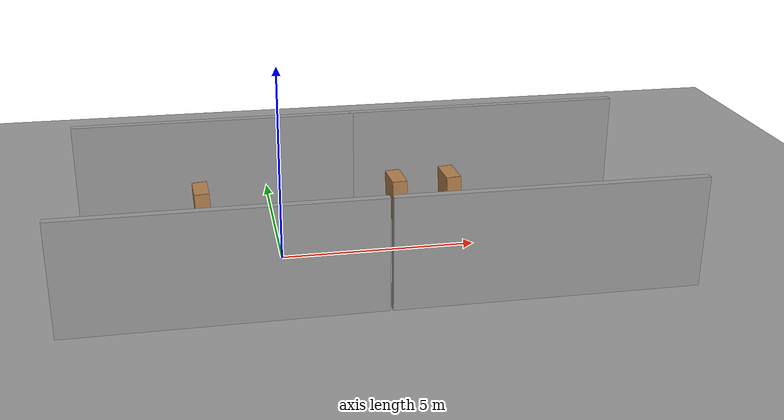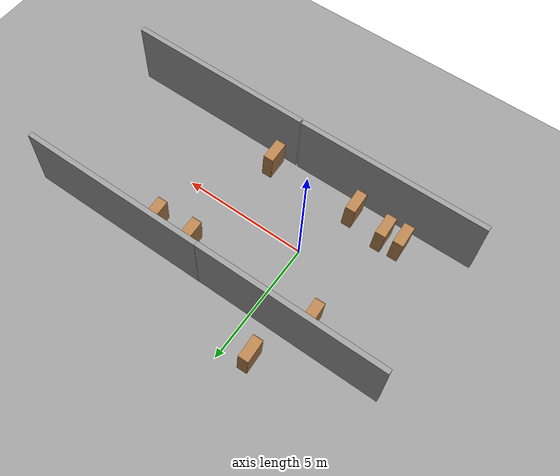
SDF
<sdf version="1.6">
 <world name="default">
  <light name="sun" type="directional">
   <cast_shadows>0</cast_shadows>
   <pose>0 0 10 0 -0 0</pose>
   <diffuse>0.8 0.8 0.8 1</diffuse>
   <specular>0.2 0.2 0.2 1</specular>
   <attenuation>
    <range>1000</range>
    <constant>0.9</constant>
    <linear>0.01</linear>
    <quadratic>0.001</quadratic>
   </attenuation>
   <direction>0.5 0.1 -0.9</direction>
  </light>
  <scene><ambient>0.4 0.4 0.4 1</ambient><background>0.7 0.7 0.7 1</background><shadows>0</shadows></scene>
  <physics name="default_physics" default="0" type="ode">
   <max_step_size>0.01</max_step_size>
   <real_time_factor>1</real_time_factor>
   <real_time_update_rate>100</real_time_update_rate>
  </physics>
  <model name="bookshelf">
   <static>1</static>
   <link name="link">
    <inertial><mass>1</mass></inertial>
    <collision name="back">
     <pose>0 0.005 0.6 0 -0 0</pose>
     <geometry><box><size>0.9 0.01 1.2</size></box></geometry>
    </collision>
    <visual name="visual1">
     <pose>0 0.005 0.6 0 -0 0</pose>
     <geometry><box><size>0.9 0.01 1.2</size></box></geometry>
     <material>
      <script><uri>file://media/materials/scripts/gazebo.material</uri><name>Gazebo/Wood</name></script>
     </material>
    </visual>
    <collision name="left_side">
     <pose>0.45 -0.195 0.6 0 -0 0</pose>
     <geometry><box><size>0.02 0.4 1.2</size></box></geometry>
    </collision>
    <visual name="visual2">
     <pose>0.45 -0.195 0.6 0 -0 0</pose>
     <geometry><box><size>0.02 0.4 1.2</size></box></geometry>
     <material>
      <script><uri>file://media/materials/scripts/gazebo.material</uri><name>Gazebo/Wood</name></script>
     </material>
    </visual>
    <collision name="right_side">
     <pose>-0.45 -0.195 0.6 0 -0 0</pose>
     <geometry><box><size>0.02 0.4 1.2</size></box></geometry>
    </collision>
    <visual name="visual3">
     <pose>-0.45 -0.195 0.6 0 -0 0</pose>
     <geometry><box><size>0.02 0.4 1.2</size></box></geometry>
     <material>
      <script><uri>file://media/materials/scripts/gazebo.material</uri><name>Gazebo/Wood</name></script>
     </material>
    </visual>
    <collision name="bottom">
     <pose>0 -0.195 0.03 0 -0 0</pose>
     <geometry><box><size>0.88 0.4 0.06</size></box></geometry>
    </collision>
    <visual name="visual4">
     <pose>0 -0.195 0.03 0 -0 0</pose>
     <geometry><box><size>0.88 0.4 0.06</size></box></geometry>
     <material>
      <script><uri>file://media/materials/scripts/gazebo.material</uri><name>Gazebo/Wood</name></script>
     </material>
    </visual>
    <collision name="top">
     <pose>0 -0.195 1.19 0 -0 0</pose>
     <geometry><box><size>0.88 0.4 0.02</size></box></geometry>
    </collision>
    <visual name="visual5">
     <pose>0 -0.195 1.19 0 -0 0</pose>
     <geometry><box><size>0.88 0.4 0.02</size></box></geometry>
     <material>
      <script><uri>file://media/materials/scripts/gazebo.material</uri><name>Gazebo/Wood</name></script>
     </material>
    </visual>
    <collision name="low_shelf">
     <pose>0 -0.195 0.43 0 -0 0</pose>
     <geometry><box><size>0.88 0.4 0.02</size></box></geometry>
    </collision>
    <visual name="visual6">
     <pose>0 -0.195 0.43 0 -0 0</pose>
     <geometry><box><size>0.88 0.4 0.02</size></box></geometry>
     <material>
      <script><uri>file://media/materials/scripts/gazebo.material</uri><name>Gazebo/Wood</name></script>
     </material>
    </visual>
    <collision name="high_shelf">
     <pose>0 -0.195 0.8 0 -0 0</pose>
     <geometry><box><size>0.88 0.4 0.02</size></box></geometry>
    </collision>
    <visual name="visual7">
     <pose>0 -0.195 0.8 0 -0 0</pose>
     <geometry><box><size>0.88 0.4 0.02</size></box></geometry>
     <material>
      <script><uri>file://media/materials/scripts/gazebo.material</uri><name>Gazebo/Wood</name></script>
     </material>
    </visual>
    <velocity_decay><linear>0</linear><angular>0</angular></velocity_decay>
   </link>
   <pose>-1.16426 4.35091 -0.006533 -0.048058 0.002164 1.61576</pose>
  </model>
  <model name="ground_plane_0">
   <static>1</static>
   <link name="link">
    <collision name="collision">
     <geometry><plane><normal>0 0 1</normal><size>100 100</size></plane></geometry>
     <surface><friction><ode><mu>100</mu><mu2>50</mu2></ode></friction></surface>
    </collision>
    <visual name="visual">
     <cast_shadows>0</cast_shadows>
     <geometry><plane><normal>0 0 1</normal><size>100 100</size></plane></geometry>
     <material>
      <script><uri>file://media/materials/scripts/gazebo.material</uri><name>Gazebo/Grey</name></script>
     </material>
    </visual>
    <velocity_decay><linear>0</linear><angular>0</angular></velocity_decay>
   </link>
   <pose>0.497681 0 0 0 -0 0</pose>
  </model>
  <gravity>0 0 -9.8</gravity>
  <magnetic_field>6e-06 2.3e-05 -4.2e-05</magnetic_field>
  <atmosphere type="adiabatic"/>
  <spherical_coordinates>
   <surface_model>EARTH_WGS84</surface_model>
   <latitude_deg>0</latitude_deg>
   <longitude_deg>0</longitude_deg>
   <elevation>0</elevation>
   <heading_deg>0</heading_deg>
  </spherical_coordinates>
  <model name="grey_wall">
   <static>1</static>
   <link name="link">
    <pose>0 0 1.4 0 -0 0</pose>
    <collision name="collision"><geometry><box><size>7.5 0.2 2.8</size></box></geometry></collision>
    <visual name="visual">
     <cast_shadows>0</cast_shadows>
     <geometry><box><size>7.5 0.2 2.8</size></box></geometry>
     <material>
      <script>
       <uri>model://grey_wall/materials/scripts</uri>
       <uri>model://grey_wall/materials/textures</uri>
       <name>vrc/grey_wall</name>
      </script>
     </material>
    </visual>
   </link>
   <pose>6.00331 -3.15825 0 0 -0 0</pose>
  </model>
  <model name="grey_wall_clone">
   <static>1</static>
   <link name="link">
    <pose>0 0 1.4 0 -0 0</pose>
    <collision name="collision"><geometry><box><size>7.5 0.2 2.8</size></box></geometry></collision>
    <visual name="visual">
     <cast_shadows>0</cast_shadows>
     <geometry><box><size>7.5 0.2 2.8</size></box></geometry>
     <material>
      <script>
       <uri>model://grey_wall/materials/scripts</uri>
       <uri>model://grey_wall/materials/textures</uri>
       <name>vrc/grey_wall</name>
      </script>
     </material>
    </visual>
   </link>
   <pose>-1.56203 -3.18626 0 0 -0 0.008661</pose>
  </model>
  <model name="grey_wall_clone_clone">
   <static>1</static>
   <link name="link">
    <pose>0 0 1.4 0 -0 0</pose>
    <collision name="collision"><geometry><box><size>7.5 0.2 2.8</size></box></geometry></collision>
    <visual name="visual">
     <cast_shadows>0</cast_shadows>
     <geometry><box><size>7.5 0.2 2.8</size></box></geometry>
     <material>
      <script>
       <uri>model://grey_wall/materials/scripts</uri>
       <uri>model://grey_wall/materials/textures</uri>
       <name>vrc/grey_wall</name>
      </script>
     </material>
    </visual>
   </link>
   <pose>-1.44763 2.95808 0 0 -0 0.008661</pose>
  </model>
  <model name="grey_wall_clone_clone_0">
   <static>1</static>
   <link name="link">
    <pose>0 0 1.4 0 -0 0</pose>
    <collision name="collision"><geometry><box><size>7.5 0.2 2.8</size></box></geometry></collision>
    <visual name="visual">
     <cast_shadows>0</cast_shadows>
     <geometry><box><size>7.5 0.2 2.8</size></box></geometry>
     <material>
      <script>
       <uri>model://grey_wall/materials/scripts</uri>
       <uri>model://grey_wall/materials/textures</uri>
       <name>vrc/grey_wall</name>
      </script>
     </material>
    </visual>
   </link>
   <pose>5.97271 3.02827 0 0 -0 0.008661</pose>
  </model>
  <model name="bookshelf_clone">
   <static>1</static>
   <link name="link">
    <inertial><mass>1</mass></inertial>
    <collision name="back">
     <pose>0 0.005 0.6 0 -0 0</pose>
     <geometry><box><size>0.9 0.01 1.2</size></box></geometry>
    </collision>
    <visual name="visual1">
     <pose>0 0.005 0.6 0 -0 0</pose>
     <geometry><box><size>0.9 0.01 1.2</size></box></geometry>
     <material>
      <script><uri>file://media/materials/scripts/gazebo.material</uri><name>Gazebo/Wood</name></script>
     </material>
    </visual>
    <collision name="left_side">
     <pose>0.45 -0.195 0.6 0 -0 0</pose>
     <geometry><box><size>0.02 0.4 1.2</size></box></geometry>
    </collision>
    <visual name="visual2">
     <pose>0.45 -0.195 0.6 0 -0 0</pose>
     <geometry><box><size>0.02 0.4 1.2</size></box></geometry>
     <material>
      <script><uri>file://media/materials/scripts/gazebo.material</uri><name>Gazebo/Wood</name></script>
     </material>
    </visual>
    <collision name="right_side">
     <pose>-0.45 -0.195 0.6 0 -0 0</pose>
     <geometry><box><size>0.02 0.4 1.2</size></box></geometry>
    </collision>
    <visual name="visual3">
     <pose>-0.45 -0.195 0.6 0 -0 0</pose>
     <geometry><box><size>0.02 0.4 1.2</size></box></geometry>
     <material>
      <script><uri>file://media/materials/scripts/gazebo.material</uri><name>Gazebo/Wood</name></script>
     </material>
    </visual>
    <collision name="bottom">
     <pose>0 -0.195 0.03 0 -0 0</pose>
     <geometry><box><size>0.88 0.4 0.06</size></box></geometry>
    </collision>
    <visual name="visual4">
     <pose>0 -0.195 0.03 0 -0 0</pose>
     <geometry><box><size>0.88 0.4 0.06</size></box></geometry>
     <material>
      <script><uri>file://media/materials/scripts/gazebo.material</uri><name>Gazebo/Wood</name></script>
     </material>
    </visual>
    <collision name="top">
     <pose>0 -0.195 1.19 0 -0 0</pose>
     <geometry><box><size>0.88 0.4 0.02</size></box></geometry>
    </collision>
    <visual name="visual5">
     <pose>0 -0.195 1.19 0 -0 0</pose>
     <geometry><box><size>0.88 0.4 0.02</size></box></geometry>
     <material>
      <script><uri>file://media/materials/scripts/gazebo.material</uri><name>Gazebo/Wood</name></script>
     </material>
    </visual>
    <collision name="low_shelf">
     <pose>0 -0.195 0.43 0 -0 0</pose>
     <geometry><box><size>0.88 0.4 0.02</size></box></geometry>
    </collision>
    <visual name="visual6">
     <pose>0 -0.195 0.43 0 -0 0</pose>
     <geometry><box><size>0.88 0.4 0.02</size></box></geometry>
     <material>
      <script><uri>file://media/materials/scripts/gazebo.material</uri><name>Gazebo/Wood</name></script>
     </material>
    </visual>
    <collision name="high_shelf">
     <pose>0 -0.195 0.8 0 -0 0</pose>
     <geometry><box><size>0.88 0.4 0.02</size></box></geometry>
    </collision>
    <visual name="visual7">
     <pose>0 -0.195 0.8 0 -0 0</pose>
     <geometry><box><size>0.88 0.4 0.02</size></box></geometry>
     <material>
      <script><uri>file://media/materials/scripts/gazebo.material</uri><name>Gazebo/Wood</name></script>
     </material>
    </visual>
    <velocity_decay><linear>0</linear><angular>0</angular></velocity_decay>
   </link>
   <pose>-2.33282 -2.19009 -0.006533 -0.048058 0.002164 1.61576</pose>
  </model>
  <model name="bookshelf_clone_0">
   <static>1</static>
   <link name="link">
    <inertial><mass>1</mass></inertial>
    <collision name="back">
     <pose>0 0.005 0.6 0 -0 0</pose>
     <geometry><box><size>0.9 0.01 1.2</size></box></geometry>
    </collision>
    <visual name="visual1">
     <pose>0 0.005 0.6 0 -0 0</pose>
     <geometry><box><size>0.9 0.01 1.2</size></box></geometry>
     <material>
      <script><uri>file://media/materials/scripts/gazebo.material</uri><name>Gazebo/Wood</name></script>
     </material>
    </visual>
    <collision name="left_side">
     <pose>0.45 -0.195 0.6 0 -0 0</pose>
     <geometry><box><size>0.02 0.4 1.2</size></box></geometry>
    </collision>
    <visual name="visual2">
     <pose>0.45 -0.195 0.6 0 -0 0</pose>
     <geometry><box><size>0.02 0.4 1.2</size></box></geometry>
     <material>
      <script><uri>file://media/materials/scripts/gazebo.material</uri><name>Gazebo/Wood</name></script>
     </material>
    </visual>
    <collision name="right_side">
     <pose>-0.45 -0.195 0.6 0 -0 0</pose>
     <geometry><box><size>0.02 0.4 1.2</size></box></geometry>
    </collision>
    <visual name="visual3">
     <pose>-0.45 -0.195 0.6 0 -0 0</pose>
     <geometry><box><size>0.02 0.4 1.2</size></box></geometry>
     <material>
      <script><uri>file://media/materials/scripts/gazebo.material</uri><name>Gazebo/Wood</name></script>
     </material>
    </visual>
    <collision name="bottom">
     <pose>0 -0.195 0.03 0 -0 0</pose>
     <geometry><box><size>0.88 0.4 0.06</size></box></geometry>
    </collision>
    <visual name="visual4">
     <pose>0 -0.195 0.03 0 -0 0</pose>
     <geometry><box><size>0.88 0.4 0.06</size></box></geometry>
     <material>
      <script><uri>file://media/materials/scripts/gazebo.material</uri><name>Gazebo/Wood</name></script>
     </material>
    </visual>
    <collision name="top">
     <pose>0 -0.195 1.19 0 -0 0</pose>
     <geometry><box><size>0.88 0.4 0.02</size></box></geometry>
    </collision>
    <visual name="visual5">
     <pose>0 -0.195 1.19 0 -0 0</pose>
     <geometry><box><size>0.88 0.4 0.02</size></box></geometry>
     <material>
      <script><uri>file://media/materials/scripts/gazebo.material</uri><name>Gazebo/Wood</name></script>
     </material>
    </visual>
    <collision name="low_shelf">
     <pose>0 -0.195 0.43 0 -0 0</pose>
     <geometry><box><size>0.88 0.4 0.02</size></box></geometry>
    </collision>
    <visual name="visual6">
     <pose>0 -0.195 0.43 0 -0 0</pose>
     <geometry><box><size>0.88 0.4 0.02</size></box></geometry>
     <material>
      <script><uri>file://media/materials/scripts/gazebo.material</uri><name>Gazebo/Wood</name></script>
     </material>
    </visual>
    <collision name="high_shelf">
     <pose>0 -0.195 0.8 0 -0 0</pose>
     <geometry><box><size>0.88 0.4 0.02</size></box></geometry>
    </collision>
    <visual name="visual7">
     <pose>0 -0.195 0.8 0 -0 0</pose>
     <geometry><box><size>0.88 0.4 0.02</size></box></geometry>
     <material>
      <script><uri>file://media/materials/scripts/gazebo.material</uri><name>Gazebo/Wood</name></script>
     </material>
    </visual>
    <velocity_decay><linear>0</linear><angular>0</angular></velocity_decay>
   </link>
   <pose>-3.02963 -2.24333 -0.006533 -0.048058 0.002164 1.61576</pose>
  </model>
  <model name="bookshelf_clone_1">
   <static>1</static>
   <link name="link">
    <inertial><mass>1</mass></inertial>
    <collision name="back">
     <pose>0 0.005 0.6 0 -0 0</pose>
     <geometry><box><size>0.9 0.01 1.2</size></box></geometry>
    </collision>
    <visual name="visual1">
     <pose>0 0.005 0.6 0 -0 0</pose>
     <geometry><box><size>0.9 0.01 1.2</size></box></geometry>
     <material>
      <script><uri>file://media/materials/scripts/gazebo.material</uri><name>Gazebo/Wood</name></script>
     </material>
    </visual>
    <collision name="left_side">
     <pose>0.45 -0.195 0.6 0 -0 0</pose>
     <geometry><box><size>0.02 0.4 1.2</size></box></geometry>
    </collision>
    <visual name="visual2">
     <pose>0.45 -0.195 0.6 0 -0 0</pose>
     <geometry><box><size>0.02 0.4 1.2</size></box></geometry>
     <material>
      <script><uri>file://media/materials/scripts/gazebo.material</uri><name>Gazebo/Wood</name></script>
     </material>
    </visual>
    <collision name="right_side">
     <pose>-0.45 -0.195 0.6 0 -0 0</pose>
     <geometry><box><size>0.02 0.4 1.2</size></box></geometry>
    </collision>
    <visual name="visual3">
     <pose>-0.45 -0.195 0.6 0 -0 0</pose>
     <geometry><box><size>0.02 0.4 1.2</size></box></geometry>
     <material>
      <script><uri>file://media/materials/scripts/gazebo.material</uri><name>Gazebo/Wood</name></script>
     </material>
    </visual>
    <collision name="bottom">
     <pose>0 -0.195 0.03 0 -0 0</pose>
     <geometry><box><size>0.88 0.4 0.06</size></box></geometry>
    </collision>
    <visual name="visual4">
     <pose>0 -0.195 0.03 0 -0 0</pose>
     <geometry><box><size>0.88 0.4 0.06</size></box></geometry>
     <material>
      <script><uri>file://media/materials/scripts/gazebo.material</uri><name>Gazebo/Wood</name></script>
     </material>
    </visual>
    <collision name="top">
     <pose>0 -0.195 1.19 0 -0 0</pose>
     <geometry><box><size>0.88 0.4 0.02</size></box></geometry>
    </collision>
    <visual name="visual5">
     <pose>0 -0.195 1.19 0 -0 0</pose>
     <geometry><box><size>0.88 0.4 0.02</size></box></geometry>
     <material>
      <script><uri>file://media/materials/scripts/gazebo.material</uri><name>Gazebo/Wood</name></script>
     </material>
    </visual>
    <collision name="low_shelf">
     <pose>0 -0.195 0.43 0 -0 0</pose>
     <geometry><box><size>0.88 0.4 0.02</size></box></geometry>
    </collision>
    <visual name="visual6">
     <pose>0 -0.195 0.43 0 -0 0</pose>
     <geometry><box><size>0.88 0.4 0.02</size></box></geometry>
     <material>
      <script><uri>file://media/materials/scripts/gazebo.material</uri><name>Gazebo/Wood</name></script>
     </material>
    </visual>
    <collision name="high_shelf">
     <pose>0 -0.195 0.8 0 -0 0</pose>
     <geometry><box><size>0.88 0.4 0.02</size></box></geometry>
    </collision>
    <visual name="visual7">
     <pose>0 -0.195 0.8 0 -0 0</pose>
     <geometry><box><size>0.88 0.4 0.02</size></box></geometry>
     <material>
      <script><uri>file://media/materials/scripts/gazebo.material</uri><name>Gazebo/Wood</name></script>
     </material>
    </visual>
    <velocity_decay><linear>0</linear><angular>0</angular></velocity_decay>
   </link>
   <pose>-0.933129 -2.41177 -0.006533 -0.048058 0.002164 1.61576</pose>
  </model>
  <model name="bookshelf_clone_2">
   <static>1</static>
   <link name="link">
    <inertial><mass>1</mass></inertial>
    <collision name="back">
     <pose>0 0.005 0.6 0 -0 0</pose>
     <geometry><box><size>0.9 0.01 1.2</size></box></geometry>
    </collision>
    <visual name="visual1">
     <pose>0 0.005 0.6 0 -0 0</pose>
     <geometry><box><size>0.9 0.01 1.2</size></box></geometry>
     <material>
      <script><uri>file://media/materials/scripts/gazebo.material</uri><name>Gazebo/Wood</name></script>
     </material>
    </visual>
    <collision name="left_side">
     <pose>0.45 -0.195 0.6 0 -0 0</pose>
     <geometry><box><size>0.02 0.4 1.2</size></box></geometry>
    </collision>
    <visual name="visual2">
     <pose>0.45 -0.195 0.6 0 -0 0</pose>
     <geometry><box><size>0.02 0.4 1.2</size></box></geometry>
     <material>
      <script><uri>file://media/materials/scripts/gazebo.material</uri><name>Gazebo/Wood</name></script>
     </material>
    </visual>
    <collision name="right_side">
     <pose>-0.45 -0.195 0.6 0 -0 0</pose>
     <geometry><box><size>0.02 0.4 1.2</size></box></geometry>
    </collision>
    <visual name="visual3">
     <pose>-0.45 -0.195 0.6 0 -0 0</pose>
     <geometry><box><size>0.02 0.4 1.2</size></box></geometry>
     <material>
      <script><uri>file://media/materials/scripts/gazebo.material</uri><name>Gazebo/Wood</name></script>
     </material>
    </visual>
    <collision name="bottom">
     <pose>0 -0.195 0.03 0 -0 0</pose>
     <geometry><box><size>0.88 0.4 0.06</size></box></geometry>
    </collision>
    <visual name="visual4">
     <pose>0 -0.195 0.03 0 -0 0</pose>
     <geometry><box><size>0.88 0.4 0.06</size></box></geometry>
     <material>
      <script><uri>file://media/materials/scripts/gazebo.material</uri><name>Gazebo/Wood</name></script>
     </material>
    </visual>
    <collision name="top">
     <pose>0 -0.195 1.19 0 -0 0</pose>
     <geometry><box><size>0.88 0.4 0.02</size></box></geometry>
    </collision>
    <visual name="visual5">
     <pose>0 -0.195 1.19 0 -0 0</pose>
     <geometry><box><size>0.88 0.4 0.02</size></box></geometry>
     <material>
      <script><uri>file://media/materials/scripts/gazebo.material</uri><name>Gazebo/Wood</name></script>
     </material>
    </visual>
    <collision name="low_shelf">
     <pose>0 -0.195 0.43 0 -0 0</pose>
     <geometry><box><size>0.88 0.4 0.02</size></box></geometry>
    </collision>
    <visual name="visual6">
     <pose>0 -0.195 0.43 0 -0 0</pose>
     <geometry><box><size>0.88 0.4 0.02</size></box></geometry>
     <material>
      <script><uri>file://media/materials/scripts/gazebo.material</uri><name>Gazebo/Wood</name></script>
     </material>
    </visual>
    <collision name="high_shelf">
     <pose>0 -0.195 0.8 0 -0 0</pose>
     <geometry><box><size>0.88 0.4 0.02</size></box></geometry>
    </collision>
    <visual name="visual7">
     <pose>0 -0.195 0.8 0 -0 0</pose>
     <geometry><box><size>0.88 0.4 0.02</size></box></geometry>
     <material>
      <script><uri>file://media/materials/scripts/gazebo.material</uri><name>Gazebo/Wood</name></script>
     </material>
    </visual>
    <velocity_decay><linear>0</linear><angular>0</angular></velocity_decay>
   </link>
   <pose>2.73641 -2.45921 -0.006533 -0.048058 0.002164 1.61576</pose>
  </model>
  <model name="bookshelf_clone_3">
   <static>1</static>
   <link name="link">
    <inertial><mass>1</mass></inertial>
    <collision name="back">
     <pose>0 0.005 0.6 0 -0 0</pose>
     <geometry><box><size>0.9 0.01 1.2</size></box></geometry>
    </collision>
    <visual name="visual1">
     <pose>0 0.005 0.6 0 -0 0</pose>
     <geometry><box><size>0.9 0.01 1.2</size></box></geometry>
     <material>
      <script><uri>file://media/materials/scripts/gazebo.material</uri><name>Gazebo/Wood</name></script>
     </material>
    </visual>
    <collision name="left_side">
     <pose>0.45 -0.195 0.6 0 -0 0</pose>
     <geometry><box><size>0.02 0.4 1.2</size></box></geometry>
    </collision>
    <visual name="visual2">
     <pose>0.45 -0.195 0.6 0 -0 0</pose>
     <geometry><box><size>0.02 0.4 1.2</size></box></geometry>
     <material>
      <script><uri>file://media/materials/scripts/gazebo.material</uri><name>Gazebo/Wood</name></script>
     </material>
    </visual>
    <collision name="right_side">
     <pose>-0.45 -0.195 0.6 0 -0 0</pose>
     <geometry><box><size>0.02 0.4 1.2</size></box></geometry>
    </collision>
    <visual name="visual3">
     <pose>-0.45 -0.195 0.6 0 -0 0</pose>
     <geometry><box><size>0.02 0.4 1.2</size></box></geometry>
     <material>
      <script><uri>file://media/materials/scripts/gazebo.material</uri><name>Gazebo/Wood</name></script>
     </material>
    </visual>
    <collision name="bottom">
     <pose>0 -0.195 0.03 0 -0 0</pose>
     <geometry><box><size>0.88 0.4 0.06</size></box></geometry>
    </collision>
    <visual name="visual4">
     <pose>0 -0.195 0.03 0 -0 0</pose>
     <geometry><box><size>0.88 0.4 0.06</size></box></geometry>
     <material>
      <script><uri>file://media/materials/scripts/gazebo.material</uri><name>Gazebo/Wood</name></script>
     </material>
    </visual>
    <collision name="top">
     <pose>0 -0.195 1.19 0 -0 0</pose>
     <geometry><box><size>0.88 0.4 0.02</size></box></geometry>
    </collision>
    <visual name="visual5">
     <pose>0 -0.195 1.19 0 -0 0</pose>
     <geometry><box><size>0.88 0.4 0.02</size></box></geometry>
     <material>
      <script><uri>file://media/materials/scripts/gazebo.material</uri><name>Gazebo/Wood</name></script>
     </material>
    </visual>
    <collision name="low_shelf">
     <pose>0 -0.195 0.43 0 -0 0</pose>
     <geometry><box><size>0.88 0.4 0.02</size></box></geometry>
    </collision>
    <visual name="visual6">
     <pose>0 -0.195 0.43 0 -0 0</pose>
     <geometry><box><size>0.88 0.4 0.02</size></box></geometry>
     <material>
      <script><uri>file://media/materials/scripts/gazebo.material</uri><name>Gazebo/Wood</name></script>
     </material>
    </visual>
    <collision name="high_shelf">
     <pose>0 -0.195 0.8 0 -0 0</pose>
     <geometry><box><size>0.88 0.4 0.02</size></box></geometry>
    </collision>
    <visual name="visual7">
     <pose>0 -0.195 0.8 0 -0 0</pose>
     <geometry><box><size>0.88 0.4 0.02</size></box></geometry>
     <material>
      <script><uri>file://media/materials/scripts/gazebo.material</uri><name>Gazebo/Wood</name></script>
     </material>
    </visual>
    <velocity_decay><linear>0</linear><angular>0</angular></velocity_decay>
   </link>
   <pose>-2.0809 2.05701 -0.006533 -0.048058 0.002164 1.61576</pose>
  </model>
  <model name="bookshelf_clone_4">
   <static>1</static>
   <link name="link">
    <inertial><mass>1</mass></inertial>
    <collision name="back">
     <pose>0 0.005 0.6 0 -0 0</pose>
     <geometry><box><size>0.9 0.01 1.2</size></box></geometry>
    </collision>
    <visual name="visual1">
     <pose>0 0.005 0.6 0 -0 0</pose>
     <geometry><box><size>0.9 0.01 1.2</size></box></geometry>
     <material>
      <script><uri>file://media/materials/scripts/gazebo.material</uri><name>Gazebo/Wood</name></script>
     </material>
    </visual>
    <collision name="left_side">
     <pose>0.45 -0.195 0.6 0 -0 0</pose>
     <geometry><box><size>0.02 0.4 1.2</size></box></geometry>
    </collision>
    <visual name="visual2">
     <pose>0.45 -0.195 0.6 0 -0 0</pose>
     <geometry><box><size>0.02 0.4 1.2</size></box></geometry>
     <material>
      <script><uri>file://media/materials/scripts/gazebo.material</uri><name>Gazebo/Wood</name></script>
     </material>
    </visual>
    <collision name="right_side">
     <pose>-0.45 -0.195 0.6 0 -0 0</pose>
     <geometry><box><size>0.02 0.4 1.2</size></box></geometry>
    </collision>
    <visual name="visual3">
     <pose>-0.45 -0.195 0.6 0 -0 0</pose>
     <geometry><box><size>0.02 0.4 1.2</size></box></geometry>
     <material>
      <script><uri>file://media/materials/scripts/gazebo.material</uri><name>Gazebo/Wood</name></script>
     </material>
    </visual>
    <collision name="bottom">
     <pose>0 -0.195 0.03 0 -0 0</pose>
     <geometry><box><size>0.88 0.4 0.06</size></box></geometry>
    </collision>
    <visual name="visual4">
     <pose>0 -0.195 0.03 0 -0 0</pose>
     <geometry><box><size>0.88 0.4 0.06</size></box></geometry>
     <material>
      <script><uri>file://media/materials/scripts/gazebo.material</uri><name>Gazebo/Wood</name></script>
     </material>
    </visual>
    <collision name="top">
     <pose>0 -0.195 1.19 0 -0 0</pose>
     <geometry><box><size>0.88 0.4 0.02</size></box></geometry>
    </collision>
    <visual name="visual5">
     <pose>0 -0.195 1.19 0 -0 0</pose>
     <geometry><box><size>0.88 0.4 0.02</size></box></geometry>
     <material>
      <script><uri>file://media/materials/scripts/gazebo.material</uri><name>Gazebo/Wood</name></script>
     </material>
    </visual>
    <collision name="low_shelf">
     <pose>0 -0.195 0.43 0 -0 0</pose>
     <geometry><box><size>0.88 0.4 0.02</size></box></geometry>
    </collision>
    <visual name="visual6">
     <pose>0 -0.195 0.43 0 -0 0</pose>
     <geometry><box><size>0.88 0.4 0.02</size></box></geometry>
     <material>
      <script><uri>file://media/materials/scripts/gazebo.material</uri><name>Gazebo/Wood</name></script>
     </material>
    </visual>
    <collision name="high_shelf">
     <pose>0 -0.195 0.8 0 -0 0</pose>
     <geometry><box><size>0.88 0.4 0.02</size></box></geometry>
    </collision>
    <visual name="visual7">
     <pose>0 -0.195 0.8 0 -0 0</pose>
     <geometry><box><size>0.88 0.4 0.02</size></box></geometry>
     <material>
      <script><uri>file://media/materials/scripts/gazebo.material</uri><name>Gazebo/Wood</name></script>
     </material>
    </visual>
    <velocity_decay><linear>0</linear><angular>0</angular></velocity_decay>
   </link>
   <pose>4.72871 2.1542 -0.006533 -0.048058 0.002164 1.61576</pose>
  </model>
  <model name="bookshelf_clone_5">
   <static>1</static>
   <link name="link">
    <inertial><mass>1</mass></inertial>
    <collision name="back">
     <pose>0 0.005 0.6 0 -0 0</pose>
     <geometry><box><size>0.9 0.01 1.2</size></box></geometry>
    </collision>
    <visual name="visual1">
     <pose>0 0.005 0.6 0 -0 0</pose>
     <geometry><box><size>0.9 0.01 1.2</size></box></geometry>
     <material>
      <script><uri>file://media/materials/scripts/gazebo.material</uri><name>Gazebo/Wood</name></script>
     </material>
    </visual>
    <collision name="left_side">
     <pose>0.45 -0.195 0.6 0 -0 0</pose>
     <geometry><box><size>0.02 0.4 1.2</size></box></geometry>
    </collision>
    <visual name="visual2">
     <pose>0.45 -0.195 0.6 0 -0 0</pose>
     <geometry><box><size>0.02 0.4 1.2</size></box></geometry>
     <material>
      <script><uri>file://media/materials/scripts/gazebo.material</uri><name>Gazebo/Wood</name></script>
     </material>
    </visual>
    <collision name="right_side">
     <pose>-0.45 -0.195 0.6 0 -0 0</pose>
     <geometry><box><size>0.02 0.4 1.2</size></box></geometry>
    </collision>
    <visual name="visual3">
     <pose>-0.45 -0.195 0.6 0 -0 0</pose>
     <geometry><box><size>0.02 0.4 1.2</size></box></geometry>
     <material>
      <script><uri>file://media/materials/scripts/gazebo.material</uri><name>Gazebo/Wood</name></script>
     </material>
    </visual>
    <collision name="bottom">
     <pose>0 -0.195 0.03 0 -0 0</pose>
     <geometry><box><size>0.88 0.4 0.06</size></box></geometry>
    </collision>
    <visual name="visual4">
     <pose>0 -0.195 0.03 0 -0 0</pose>
     <geometry><box><size>0.88 0.4 0.06</size></box></geometry>
     <material>
      <script><uri>file://media/materials/scripts/gazebo.material</uri><name>Gazebo/Wood</name></script>
     </material>
    </visual>
    <collision name="top">
     <pose>0 -0.195 1.19 0 -0 0</pose>
     <geometry><box><size>0.88 0.4 0.02</size></box></geometry>
    </collision>
    <visual name="visual5">
     <pose>0 -0.195 1.19 0 -0 0</pose>
     <geometry><box><size>0.88 0.4 0.02</size></box></geometry>
     <material>
      <script><uri>file://media/materials/scripts/gazebo.material</uri><name>Gazebo/Wood</name></script>
     </material>
    </visual>
    <collision name="low_shelf">
     <pose>0 -0.195 0.43 0 -0 0</pose>
     <geometry><box><size>0.88 0.4 0.02</size></box></geometry>
    </collision>
    <visual name="visual6">
     <pose>0 -0.195 0.43 0 -0 0</pose>
     <geometry><box><size>0.88 0.4 0.02</size></box></geometry>
     <material>
      <script><uri>file://media/materials/scripts/gazebo.material</uri><name>Gazebo/Wood</name></script>
     </material>
    </visual>
    <collision name="high_shelf">
     <pose>0 -0.195 0.8 0 -0 0</pose>
     <geometry><box><size>0.88 0.4 0.02</size></box></geometry>
    </collision>
    <visual name="visual7">
     <pose>0 -0.195 0.8 0 -0 0</pose>
     <geometry><box><size>0.88 0.4 0.02</size></box></geometry>
     <material>
      <script><uri>file://media/materials/scripts/gazebo.material</uri><name>Gazebo/Wood</name></script>
     </material>
    </visual>
    <velocity_decay><linear>0</linear><angular>0</angular></velocity_decay>
   </link>
   <pose>3.21379 2.07383 -0.006533 -0.048058 0.002164 1.61576</pose>
  </model>
 </world>
</sdf>
